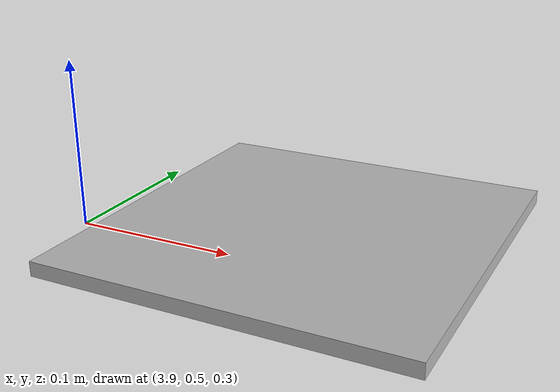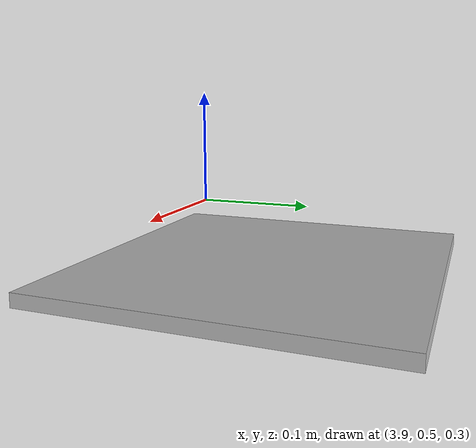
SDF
<?xml version="1.0"?>
<sdf version="1.5">
    <model name="3qr">
        <static>true</static>
        <link name="link">

             <collision name="collision3">
                <pose>4 0.6 0.27 0 0 0</pose>
                <geometry>
                    <mesh>
                        <uri>model://3qr/meshes/qr.stl</uri>
                    </mesh>
                </geometry>
            </collision>
            <visual name="visual3">

              <pose>4 0.6 0.27 0 0 0</pose>
              <geometry>
              <mesh>
                 <uri>model://3qr/meshes/qr3.dae</uri>
              </mesh>
              </geometry>

              <material>
                  <script>
                      <uri>model://3qr/materials/scripts</uri>
                      <uri>model://3qr/materials/textures</uri>
                      <name>qrMat/Diffuse</name>
                  </script>
              </material>
             </visual>

        </link>
    </model>
</sdf>
